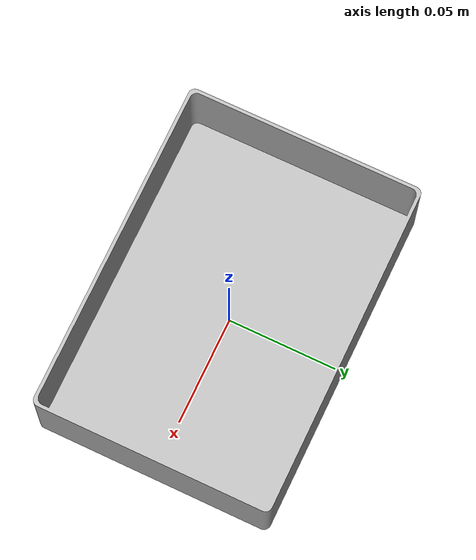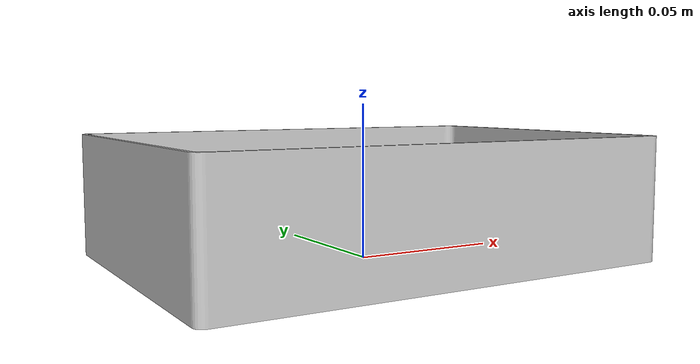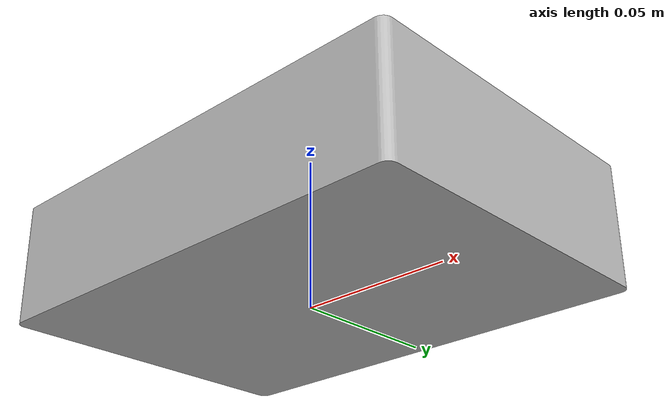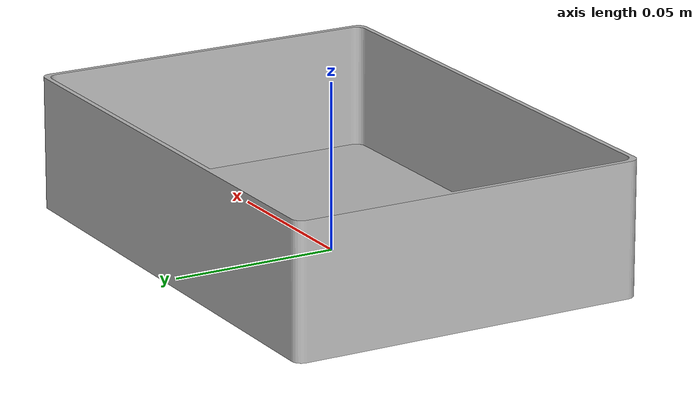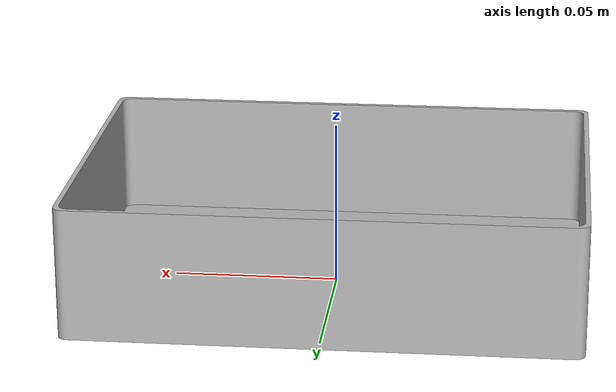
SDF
<?xml version='1.0'?>
<sdf version="1.4">
<model name="water_bowl">
	<pose>0 0 0 0 0 0</pose>
	<link name="link">
		<inertial>
			<mass>1.0</mass>
			<inertia>
				<ixx>0.0</ixx>
				<ixy>0.0</ixy>
				<ixz>0.0</ixz>
				<iyy>0.0</iyy>
				<iyz>0.0</iyz>
				<izz>0.0</izz>
			</inertia>
		</inertial>
		<collision name="collision">
			<geometry>
				<mesh>
					<uri>model://water_bowl/water_bowl.dae</uri>
				</mesh>
			</geometry>
		</collision>
		<visual name="visual">
			<geometry>
				<mesh>
					<uri>model://water_bowl/water_bowl.dae</uri>
				</mesh>
			</geometry>
		</visual>
	</link>
</model>
</sdf>
